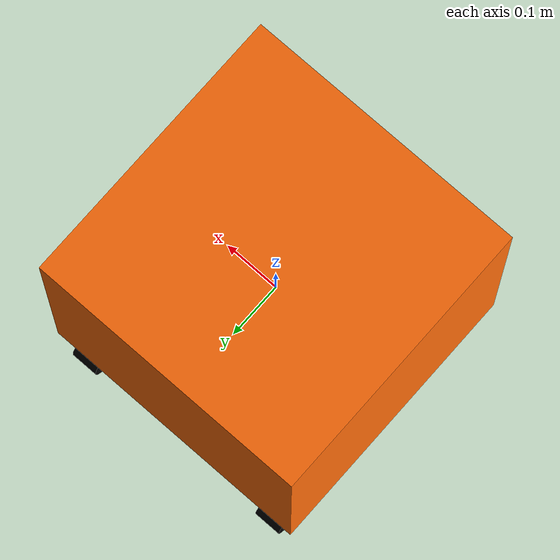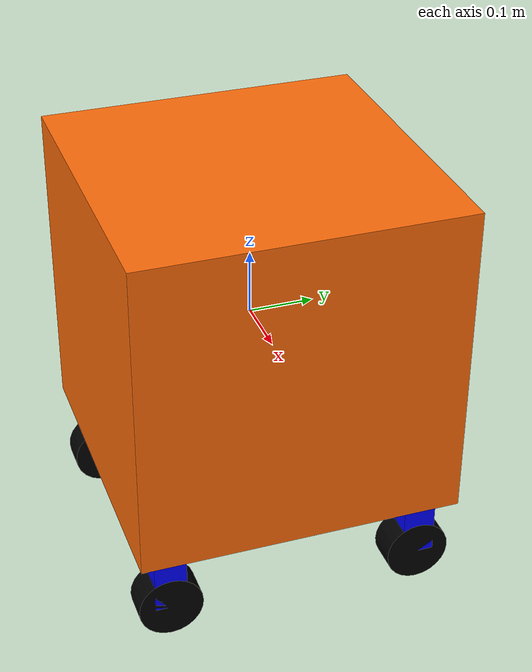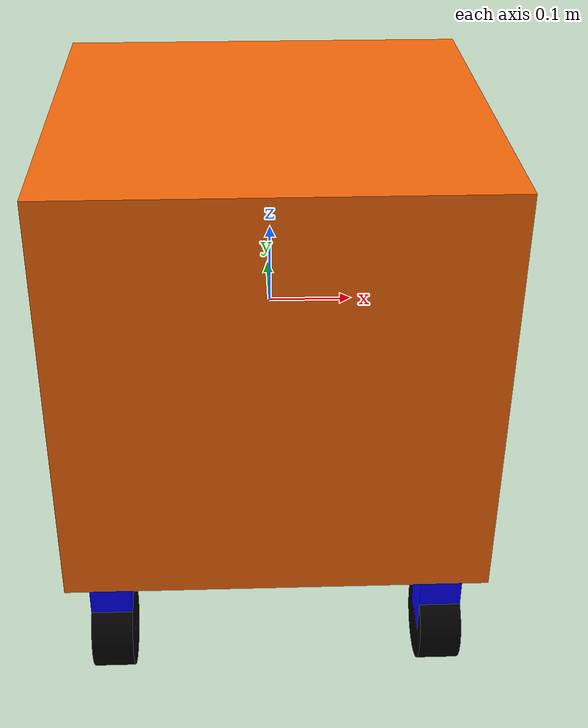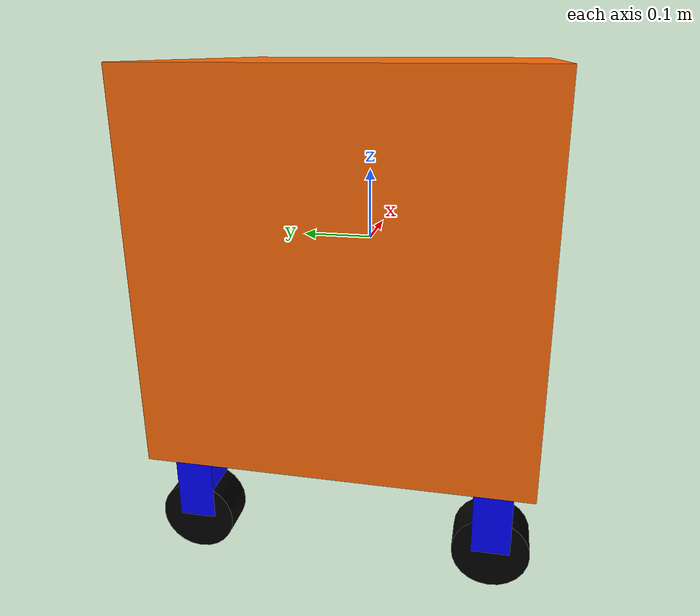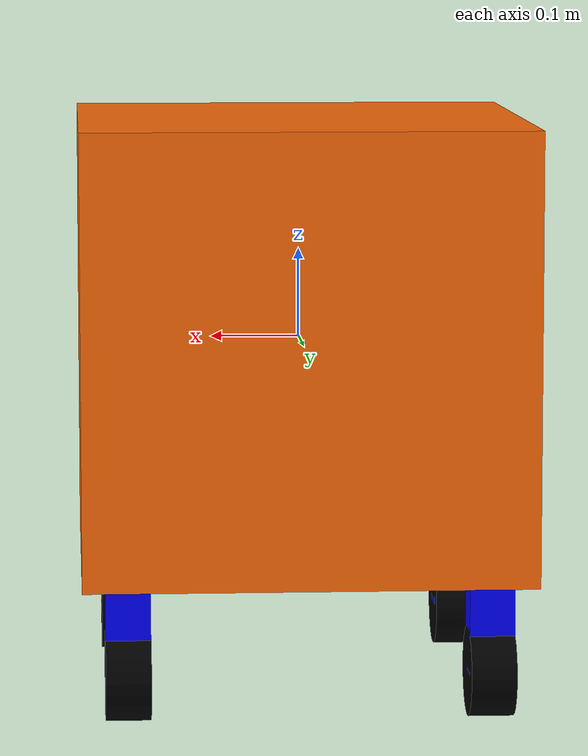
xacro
<robot name="box_robot" xmlns:xacro="http://www.ros.org/wiki/xacro">

  <link name="base_link">
    <visual>
      <geometry>
        <box size="0.5 0.5 0.5" />
      </geometry>
        <material name="orange">
    <color rgba="${255/255} ${108/255} ${10/255} 1.0" />
  </material>
    </visual>
    <collision>
      <geometry>
        <box size="0.5 0.5 0.5" />
      </geometry>
    </collision>
    <inertial>
      <mass value="10" />
      <origin xyz="0 0 0" />
      <inertia ixx="0.1" ixy="0" ixz="0" iyy="0.1" iyz="0" izz="0.1" />
    </inertial>
  </link>

  <!-- Extended Steering Links -->
  <link name="front_left_steering">
    <visual>
      <geometry>
        <box size="0.05 0.05 0.1" />
      </geometry>
      <material name="blue">
        <color rgba="0 0 1 1" />
      </material>
    </visual>
  </link>

  <link name="front_right_steering">
    <visual>
      <geometry>
        <box size="0.05 0.05 0.1" />
      </geometry>
      <material name="blue">
        <color rgba="0 0 1 1" />
      </material>
    </visual>
  </link>

  <link name="rear_left_steering">
    <visual>
      <geometry>
        <box size="0.05 0.05 0.1" />
      </geometry>
      <material name="blue">
        <color rgba="0 0 1 1" />
      </material>
    </visual>
  </link>

  <link name="rear_right_steering">
    <visual>
      <geometry>
        <box size="0.05 0.05 0.1" />
      </geometry>
      <material name="blue">
        <color rgba="0 0 1 1" />
      </material>
    </visual>
  </link>

  <!-- Wheels -->
  <link name="front_left_wheel">
    <visual>
      <geometry>
        <cylinder length="0.05" radius="0.05" />
      </geometry>
      <material name="black">
        <color rgba="0 0 0 1" />
      </material>
    </visual>
  </link>

  <link name="front_right_wheel">
    <visual>
      <geometry>
        <cylinder length="0.05" radius="0.05" />
      </geometry>
      <material name="black">
        <color rgba="0 0 0 1" />
      </material>
    </visual>
  </link>

  <link name="rear_left_wheel">
    <visual>
      <geometry>
        <cylinder length="0.05" radius="0.05" />
      </geometry>
      <material name="black">
        <color rgba="0 0 0 1" />
      </material>
    </visual>
  </link>

  <link name="rear_right_wheel">
    <visual>
      <geometry>
        <cylinder length="0.05" radius="0.05" />
      </geometry>
      <material name="black">
        <color rgba="0 0 0 1" />
      </material>
    </visual>
  </link>

  <!-- Steering Joints -->
  <joint name="front_left_steering_joint" type="revolute">
    <parent link="base_link" />
    <child link="front_left_steering" />
    <origin xyz="-0.2 0.2 -0.3" rpy="0 0 0" /> <!-- Centered at edge of base_link -->
    <axis xyz="0 0 1" />
    <limit lower="-0.785" upper="0.785" effort="5.0" velocity="1.0" />
  </joint>

  <joint name="front_right_steering_joint" type="revolute">
    <parent link="base_link" />
    <child link="front_right_steering" />
    <origin xyz="-0.2 -0.2 -0.3" rpy="0 0 0" /> <!-- Centered at edge of base_link -->
    <axis xyz="0 0 1" />
    <limit lower="-0.785" upper="0.785" effort="5.0" velocity="1.0" />
  </joint>

  <joint name="rear_left_steering_joint" type="revolute">
    <parent link="base_link" />
    <child link="rear_left_steering" />
    <origin xyz="0.2 0.2 -0.3" rpy="0 0 0" /> <!-- Centered at edge of base_link -->
    <axis xyz="0 0 1" />
    <limit lower="-0.785" upper="0.785" effort="5.0" velocity="1.0" />
  </joint>

  <joint name="rear_right_steering_joint" type="revolute">
    <parent link="base_link" />
    <child link="rear_right_steering" />
    <origin xyz="0.2 -0.2 -0.3" rpy="0 0 0" /> <!-- Centered at edge of base_link -->
    <axis xyz="0 0 1" />
    <limit lower="-0.785" upper="0.785" effort="5.0" velocity="1.0" />
  </joint>

  <!-- Axle Joints -->
  <joint name="front_left_wheel_joint" type="revolute">
    <parent link="front_left_steering" />
    <child link="front_left_wheel" />
    <origin xyz="0 0 -0.05" rpy="0 1.5708 0" />
    <axis xyz="0 0 1" />
  </joint>

  <joint name="front_right_wheel_joint" type="revolute">
    <parent link="front_right_steering" />
    <child link="front_right_wheel" />
    <origin xyz="0 0 -0.05" rpy="0 1.5708 0" />
    <axis xyz="0 0 1" />
  </joint>

  <joint name="rear_left_wheel_joint" type="revolute">
    <parent link="rear_left_steering" />
    <child link="rear_left_wheel" />
    <origin xyz="0 0 -0.05" rpy="0 1.5708 0" />
    <axis xyz="0 0 1" />
  </joint>

  <joint name="rear_right_wheel_joint" type="revolute">
    <parent link="rear_right_steering" />
    <child link="rear_right_wheel" />
    <origin xyz="0 0 -0.05" rpy="0 1.5708 0" />
    <axis xyz="0 0 1" />
  </joint>
</robot>
